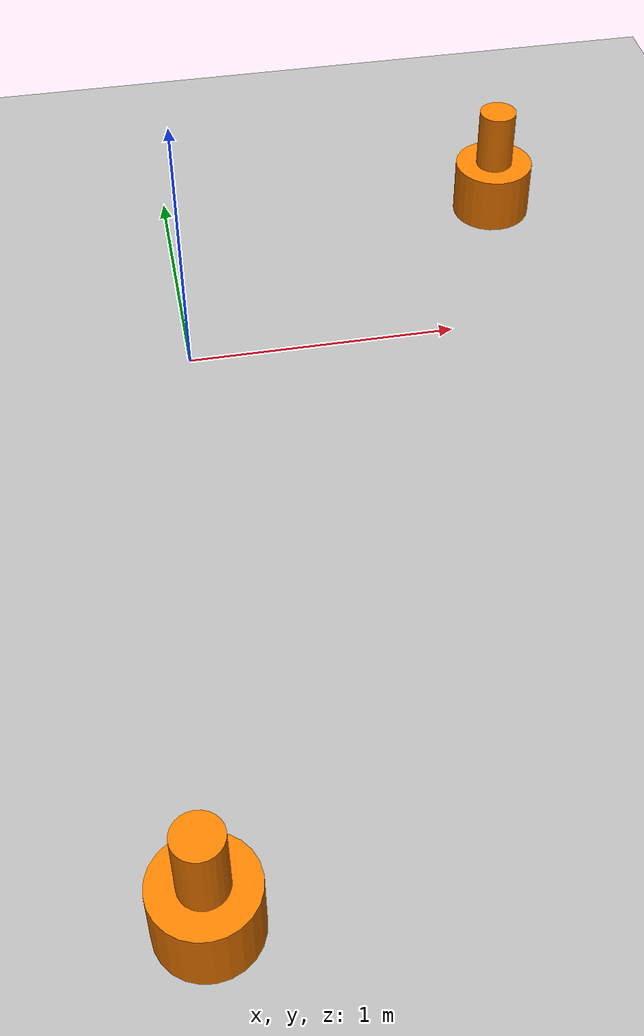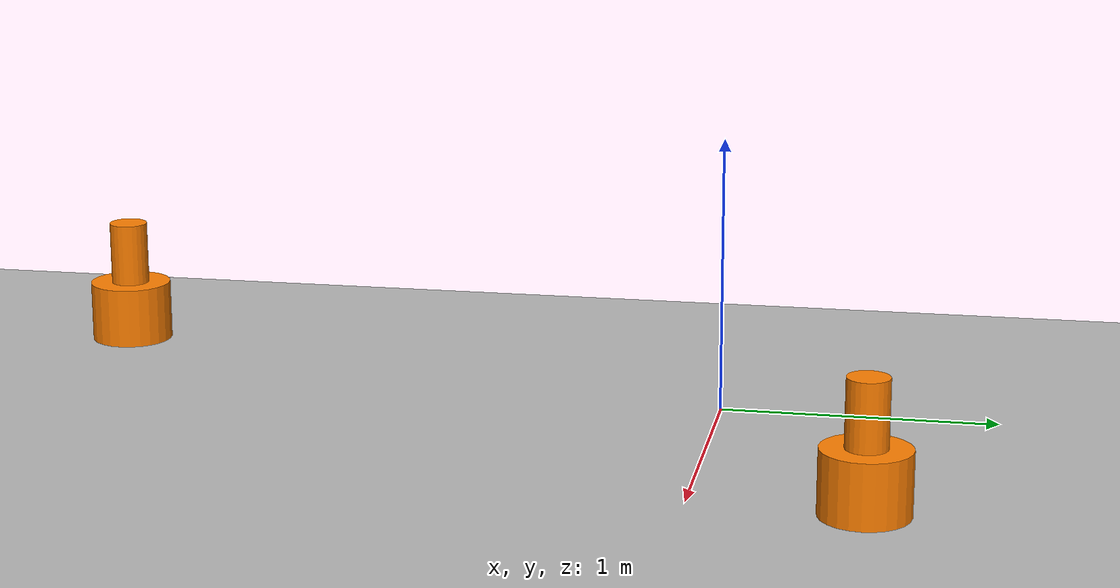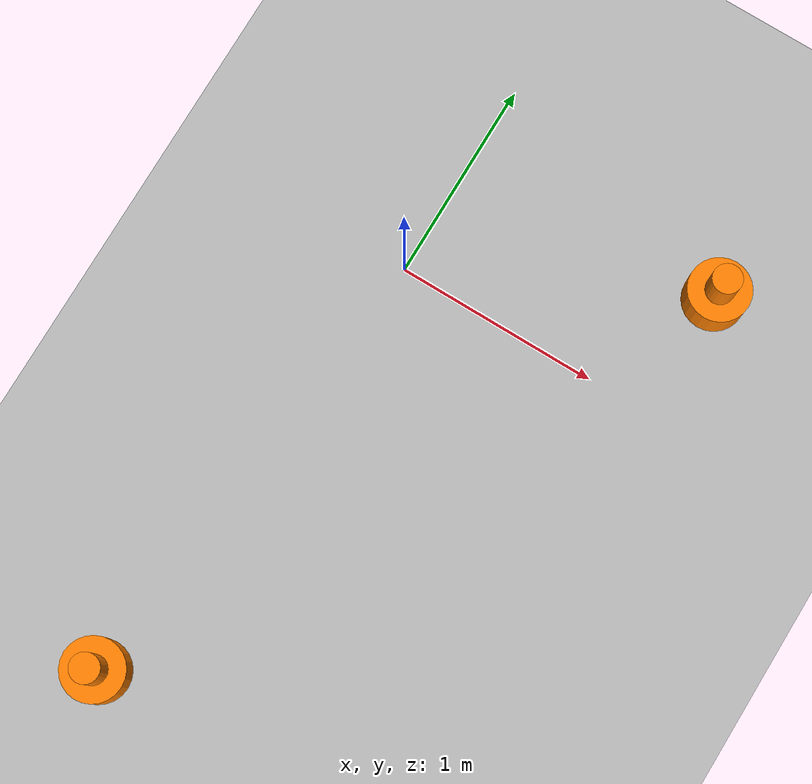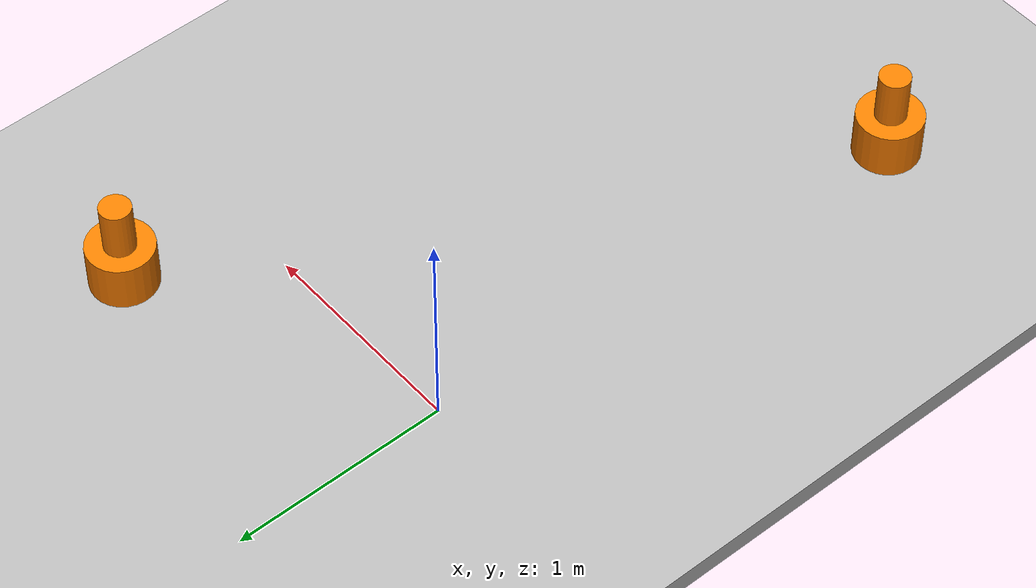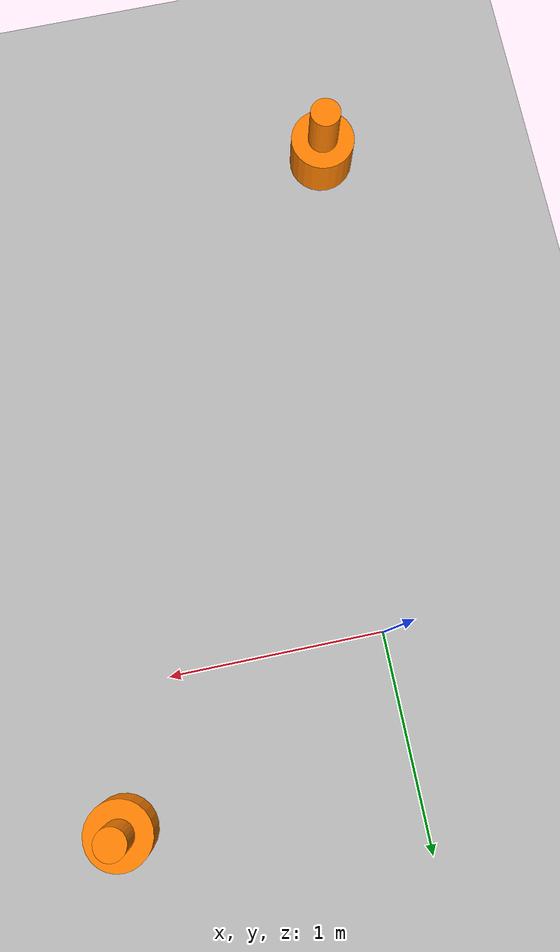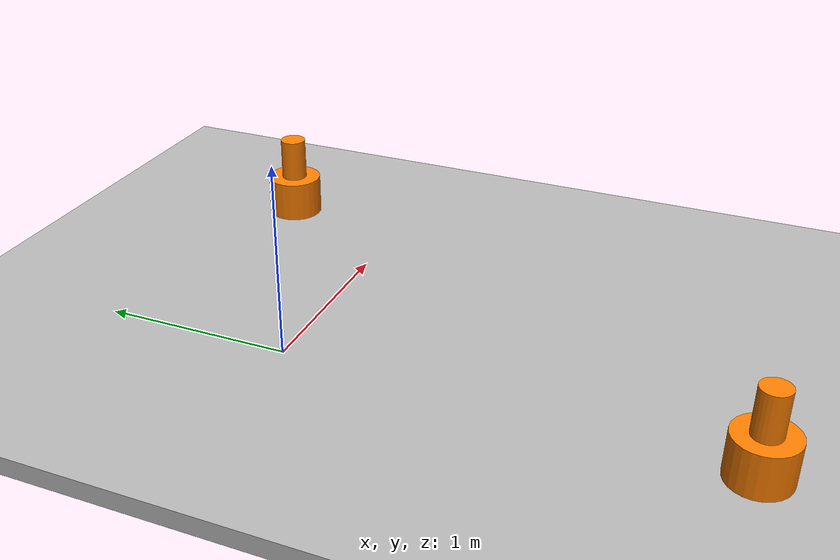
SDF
<?xml version="1.0" ?>
<sdf version="1.9">
  <world name="straight_lane_obstacles3">

    <plugin name='ignition::gazebo::systems::Physics' filename='ignition-gazebo-physics-system'/>
    <plugin name='ignition::gazebo::systems::UserCommands' filename='ignition-gazebo-user-commands-system'/>
    <plugin name='ignition::gazebo::systems::SceneBroadcaster' filename='ignition-gazebo-scene-broadcaster-system'/>

    <physics type="ode">
      <max_step_size>0.001</max_step_size>
      <real_time_update_rate>1000</real_time_update_rate>
    </physics>

    <scene>
      <ambient>0.1 0.1 0.1 0.1</ambient>
      <background>0.8 0.8 0.8 1.0</background>
      <grid>true</grid>
    </scene>

    <light type="directional" name="sun">
      <cast_shadows>true</cast_shadows>
      <pose>0 0 10 0 0 0</pose>
      <diffuse>1 1 1 1</diffuse>
      <specular>0.2 0.2 0.2 1</specular>
      <direction>-0.5 0.1 -0.9</direction>
    </light>

    <include>
      <uri>model://floor</uri>
      <pose>0 0 0 0 0 0</pose>
    </include>

    <gui fullscreen='0'>
      <camera name='user_camera'>
        <pose>-1.8 14.4 8.6 0.0 0.545 -1.65</pose>
        <view_controller>orbit</view_controller>
      </camera>
    </gui>

    <!-- Obstacles -->
    <include>
      <uri>model://cone</uri>
      <name>cone_1</name>
      <pose>1.3 0.6 0.1 0 0 0</pose>
    </include>

    <include>
      <uri>model://cone</uri>
      <name>cone_2</name>
      <pose>-0.2 -2.3 0.1 0 0 0</pose>
    </include>

  </world>
</sdf>

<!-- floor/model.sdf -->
<sdf version="1.6">
  <model name="custom_course">
    <static>true</static>
    <link name="link">
      <collision name="collision">
        <geometry>
          <box>
            <size>10 10 0.1</size> <!-- PUT YOUR COURSE SIZE HERE IN METERS -->
          </box>
        </geometry>
      </collision>
      <visual name="visual">
        <geometry>
          <box>
            <size>10 10 0.1</size> <!-- PUT YOUR COURSE SIZE HERE IN METERS -->
          </box>
        </geometry>
        <material>
          <script>
            <uri>model://floor/materials/scripts</uri>
            <uri>model://floor/materials/textures</uri>
            <name>CustomCourse/Diffuse</name>
          </script>
        </material>
      </visual>
    </link>
  </model>
</sdf>

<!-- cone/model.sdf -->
<sdf version="1.8">
  <model name="cone">
    <static>true</static>
    <link name="link">
      <!-- Base cylinder (wider bottom) -->
      <collision name="collision_base">
        <geometry>
          <cylinder>
            <radius>0.15</radius>
            <length>0.22</length>
          </cylinder>
        </geometry>
        <pose>0 0 0.11 0 0 0</pose>
      </collision>
      <visual name="visual_base">
        <geometry>
          <cylinder>
            <radius>0.15</radius>
            <length>0.22</length>
          </cylinder>
        </geometry>
        <pose>0 0 0.11 0 0 0</pose>
        <material>
          <ambient>1.0 0.5 0.0 1</ambient>
          <diffuse>1.0 0.5 0.0 1</diffuse>
          <specular>0.3 0.3 0.3 1</specular>
        </material>
      </visual>
      <!-- Top cylinder (narrower top) -->
      <collision name="collision_top">
        <geometry>
          <cylinder>
            <radius>0.07</radius>
            <length>0.23</length>
          </cylinder>
        </geometry>
        <pose>0 0 0.335 0 0 0</pose>
      </collision>
      <visual name="visual_top">
        <geometry>
          <cylinder>
            <radius>0.07</radius>
            <length>0.23</length>
          </cylinder>
        </geometry>
        <pose>0 0 0.335 0 0 0</pose>
        <material>
          <ambient>1.0 0.5 0.0 1</ambient>
          <diffuse>1.0 0.5 0.0 1</diffuse>
          <specular>0.3 0.3 0.3 1</specular>
        </material>
      </visual>
    </link>
  </model>
</sdf>
